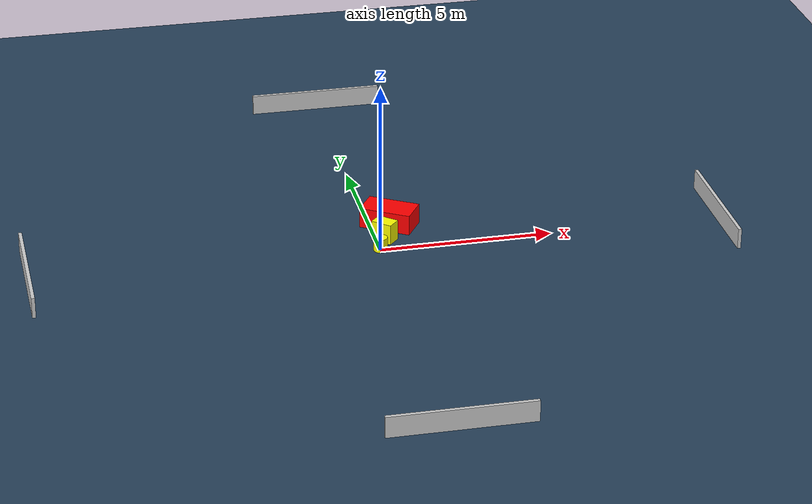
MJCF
<?xml version="1.0" ?>
<mujoco model="generated_environment">
  <option timestep="0.01" integrator="RK4" cone="elliptic"/>
  <default>
    <geom density="1"/>
  </default>
  <asset>
    <texture builtin="gradient" height="3072" name="skybox" rgb1="0.3 0.5 0.7" rgb2="0 0 0" type="skybox" width="512"/>
    <texture builtin="checker" height="300" name="groundplane" rgb1="0.2 0.3 0.4" rgb2="0.1 0.2 0.3" type="2d" width="300"/>
    <material name="groundplane" reflectance="0.2" texrepeat="5 5" texture="groundplane"/>
  </asset>
  <worldbody>
    <light dir="0 0 -1" directional="true" pos="0 0 1.5"/>
    <geom condim="3" friction="0.5 0.005 0.001" material="groundplane" name="floor" pos="0 0 0" size="0 0 0.05" type="plane"/>
    <body name="walls">
      <geom name="wall_1" condim="4" pos="-10.0 0.0 0.3" rgba="0.800000011920929 0.800000011920929 0.800000011920929 1.0" size="0.05 2.0 0.3" type="box"/>
      <geom name="wall_2" condim="4" pos="10.0 0.0 0.3" rgba="0.800000011920929 0.800000011920929 0.800000011920929 1.0" size="0.05 2.0 0.3" type="box"/>
      <geom name="wall_3" condim="4" pos="0.0 -10.0 0.3" rgba="0.800000011920929 0.800000011920929 0.800000011920929 1.0" size="2.0 0.05 0.3" type="box"/>
      <geom name="wall_4" condim="4" pos="0.0 10.0 0.3" rgba="0.800000011920929 0.800000011920929 0.800000011920929 1.0" size="2.0 0.05 0.3" type="box"/>
    </body>
    <body name="robot">
      <joint name="joint_x" type="slide" pos="0 0 0" axis="1 0 0"/>
      <joint name="joint_y" type="slide" pos="0 0 0" axis="0 1 0"/>
      <geom name="robot" type="cylinder" pos="0.0 0.0 0.2" size="0.2 0.2 0.0" mass="5.0" friction="1.0 0.005 0.0001" condim="4" rgba="1.0 1.0 0.0 1.0"/>
    </body>
    <body name="obstacle_1_movable">
      <geom name="obstacle_1_movable" condim="4" pos="0.25130455143530794 0.6086698161278299 0.3" euler="0 0 228.10582996351684" friction="0.0 0.005 0.001" rgba="1.0 1.0 0.0 1.0" size="0.21027891219460026 0.3115504170034172 0.3" type="box" mass="0.1"/>
      <joint type="free"/>
    </body>
    <body name="obstacle_2_static">
      <geom name="obstacle_2_static" condim="4" pos="0.5766293033707172 1.4917611780713558 0.3" euler="0 0 58.1700130405918" friction="0.0 0.005 0.001" rgba="1.0 0.0 0.0 1.0" size="0.4271365300272314 0.7599478819435168 0.3" type="box"/>
    </body>
  </worldbody>
  <actuator>
    <motor name="actuator_x" joint="joint_x" gear="1" ctrlrange="-1 1"/>
    <motor name="actuator_y" joint="joint_y" gear="1" ctrlrange="-1 1"/>
  </actuator>
</mujoco>
